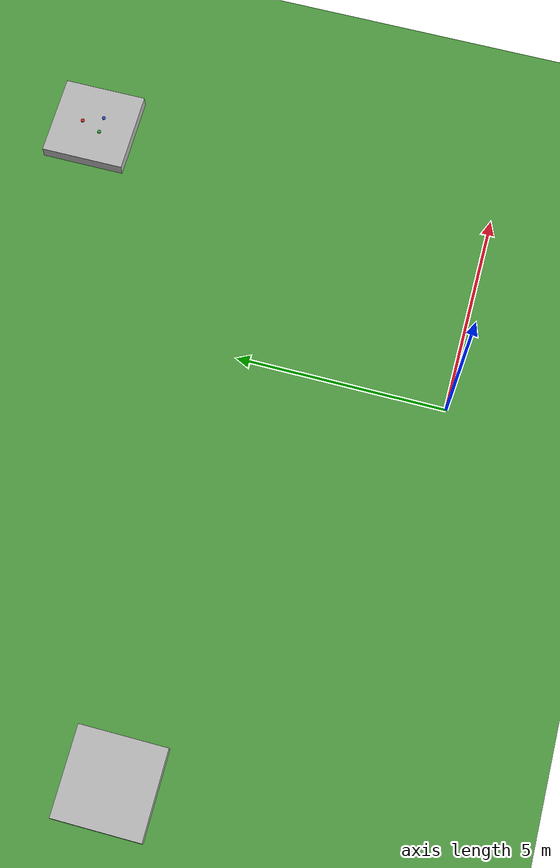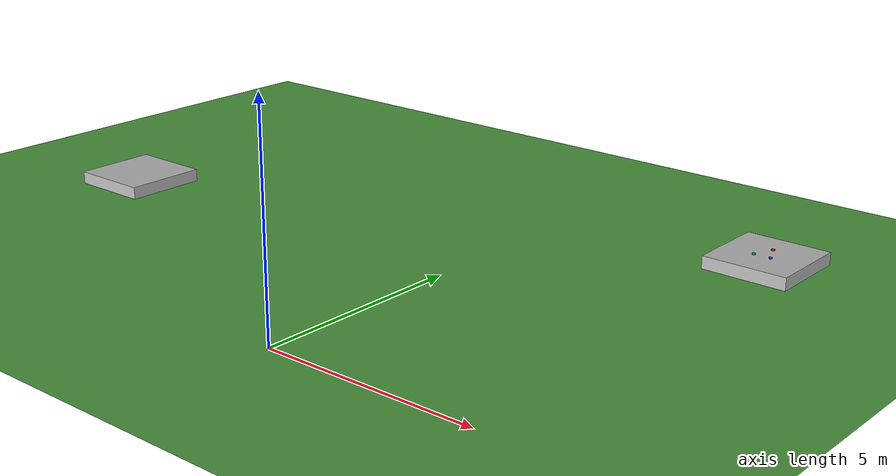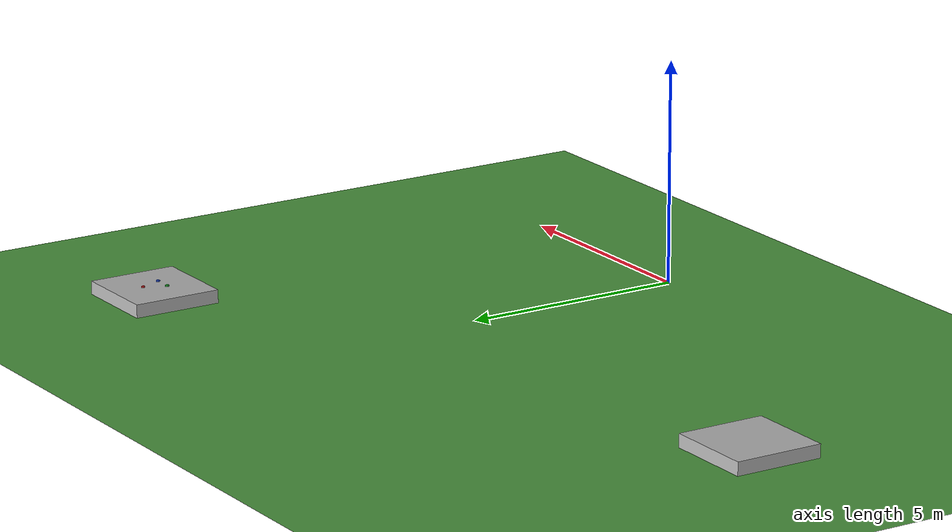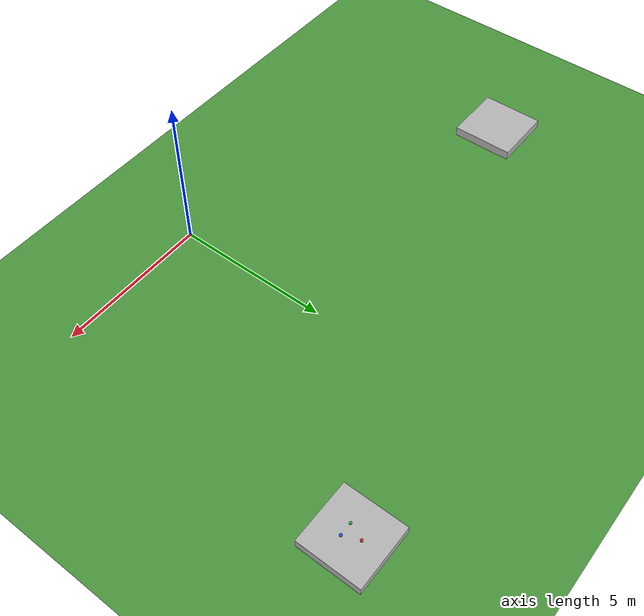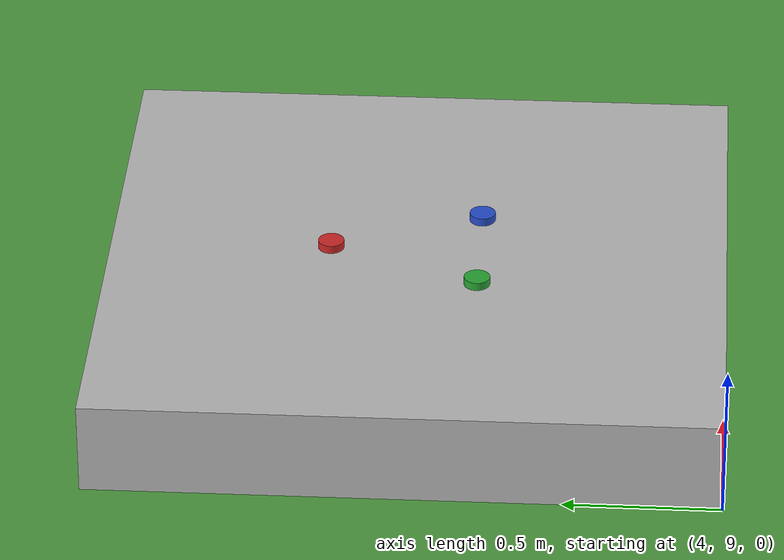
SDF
<?xml version="1.0" ?>
<sdf version="1.6">
  <world name="default">
    <scene>
      <shadows>0</shadows>
    </scene>
    <gui>
      <camera name="user_camera">
        <pose>0 -5 1 0 0.2 1.5708</pose>
      </camera>
    </gui>
    <physics type="ode">
      <ode>
        <solver>
          <type>quick</type>
          <iters>100</iters>
          <sor>1.0</sor>
        </solver>
        <constraints>
          <cfm>0.0</cfm>
          <erp>0.2</erp>
          <contact_max_correcting_vel>0.1</contact_max_correcting_vel>
          <contact_surface_layer>0.0</contact_surface_layer>
        </constraints>
      </ode>
      <real_time_update_rate>-1</real_time_update_rate>
    </physics>
    <gravity>0 0 -9.8</gravity>
    <include>
      <uri>model://sun</uri>
    </include>

    <model name="ground_plane">
      <static>true</static>
      <link name="link">
        <collision name="collision">
          <geometry>
            <plane>
              <normal>0 0 1</normal>
              <size>5000 5000</size>
            </plane>
          </geometry>
          <surface>
            <friction>
              <ode>
                <mu>100</mu>
                <mu2>50</mu2>
              </ode>
            </friction>
          </surface>
        </collision>
        <visual name="background">
          <pose>000 0 -.1 0 0 0</pose>
          <cast_shadows>false</cast_shadows>
          <geometry>
            <plane>
              <normal>0 0 1</normal>
              <size>50 50</size>
            </plane>
          </geometry>
          <material>
            <script>
              <uri>file://media/materials/scripts/gazebo.material</uri>
              <name>Gazebo/Grass</name>
            </script>
          </material>
        </visual>

      </link>
    </model>
    <model name="landing_pad_filled">
      <static>true</static>
      <link name="landing_pad_filled_link">
        <pose>5 10 .15 0 0 0</pose>
        <collision name="collision">
          <geometry>
            <box>
              <size>2 2 .3</size>
            </box>
          </geometry>
          <surface>
            <friction>
              <ode>
                <mu>100</mu>
                <mu2>50</mu2>
              </ode>
            </friction>
          </surface>
        </collision>
        <visual name="landing_pad_filled_visual">
          <cast_shadows>false</cast_shadows>
          <geometry>
            <mesh>
              <scale>.5 .5 .5</scale>
              <uri>model://landing_pad/meshes/Landing_Pad_Mesh.dae</uri>
            </mesh>
          </geometry>
          <material>
            <shader type='pixel'/>
          </material>
          <transparency>0</transparency>
        </visual>
      </link>
    </model>
    <model name="tin_red">
      <static>false</static>
      <link name="tin_red_link">
        <pose>5 10.2828 .3135 0 0 0</pose>
        <collision name="collision">
          <geometry>
            <cylinder>
              <radius>0.0421</radius>
              <length>0.027</length>
            </cylinder>
          </geometry>
          <surface>
            <friction>
              <ode>
                <mu>100</mu>
                <mu2>50</mu2>
              </ode>
            </friction>
          </surface>
        </collision>
        <visual name="tin_red_visual">
          <pose>0 0 0 0 0 0</pose>
          <cast_shadows>false</cast_shadows>
          <geometry>
            <cylinder>
              <radius>0.0421</radius>
              <length>0.027</length>
            </cylinder>
          </geometry>
          <material>
            <script>
              <uri>file://media/materials/scripts/gazebo.material</uri>
              <name>Gazebo/Red</name>
            </script>
          </material>
        </visual>
      </link>
    </model>
    <model name="tin_blue">
      <static>false</static>
      <link name="tin_blue_link">
        <pose>5.2 9.8 .3135 0 0 0</pose>
        <collision name="collision">
          <geometry>
            <cylinder>
              <radius>0.0421</radius>
              <length>0.027</length>
            </cylinder>
          </geometry>
          <surface>
            <friction>
              <ode>
                <mu>100</mu>
                <mu2>50</mu2>
              </ode>
            </friction>
          </surface>
        </collision>
        <visual name="tin_blue_visual">
          <pose>0 0 0 0 0 0</pose>
          <cast_shadows>false</cast_shadows>
          <geometry>
            <cylinder>
              <radius>0.0421</radius>
              <length>0.027</length>
            </cylinder>
          </geometry>
          <material>
            <script>
              <uri>file://media/materials/scripts/gazebo.material</uri>
              <name>Gazebo/Blue</name>
            </script>
          </material>
        </visual>
      </link>
    </model>
    <model name="tin_green">
      <static>false</static>
      <link name="tin_green_link">
        <pose>4.8 9.8 .3135 0 0 0</pose>
        <collision name="collision">
          <geometry>
            <cylinder>
              <radius>0.0421</radius>
              <length>0.027</length>
            </cylinder>
          </geometry>
          <surface>
            <friction>
              <ode>
                <mu>100</mu>
                <mu2>50</mu2>
              </ode>
            </friction>
          </surface>
        </collision>
        <visual name="tin_green_visual">
          <pose>0 0 0 0 0 0</pose>
          <cast_shadows>false</cast_shadows>
          <geometry>
            <cylinder>
              <radius>0.0421</radius>
              <length>0.027</length>
            </cylinder>
          </geometry>
          <material>
            <script>
              <uri>file://media/materials/scripts/gazebo.material</uri>
              <name>Gazebo/Green</name>
            </script>
          </material>
        </visual>
      </link>
    </model>
    <model name="landing_pad_empty">
      <static>true</static>
      <link name="landing_pad_empty_link">
        <pose>-10 5 .15 0 0 0</pose>
        <collision name="collision">
          <geometry>
            <box>
              <size>2 2 .3</size>
            </box>
          </geometry>
          <surface>
            <friction>
              <ode>
                <mu>100</mu>
                <mu2>50</mu2>
              </ode>
            </friction>
          </surface>
        </collision>
        <visual name="landing_pad_empty_visual">
          <cast_shadows>false</cast_shadows>
          <geometry>
            <mesh>
              <scale>.5 .5 .5</scale>
              <uri>model://landing_pad/meshes/Landing_Pad_Mesh.dae</uri>
            </mesh>
          </geometry>
          <material>
            <shader type='pixel'/>
          </material>
          <transparency>0</transparency>
        </visual>
      </link>
    </model>
  </world>
</sdf>
